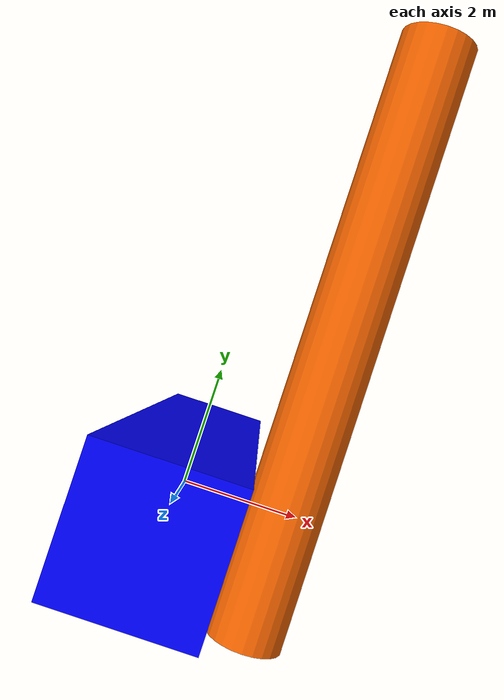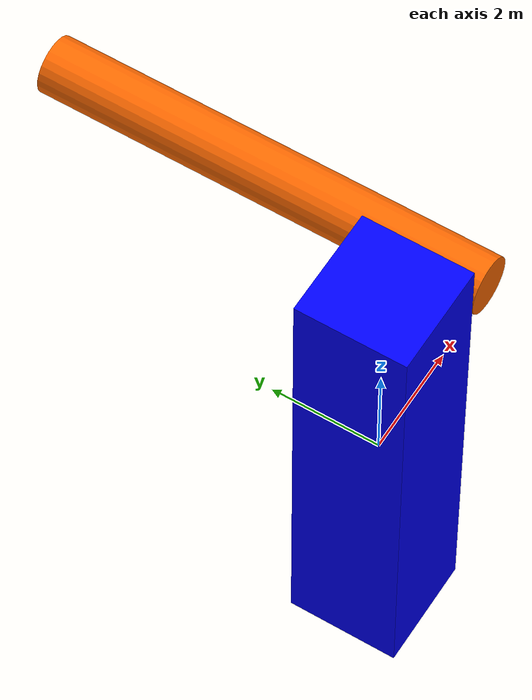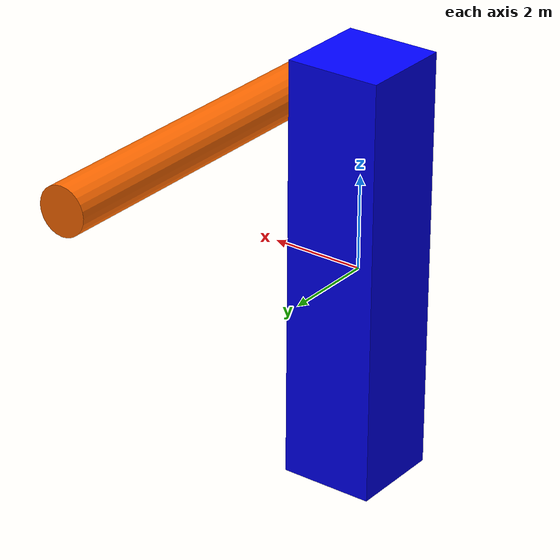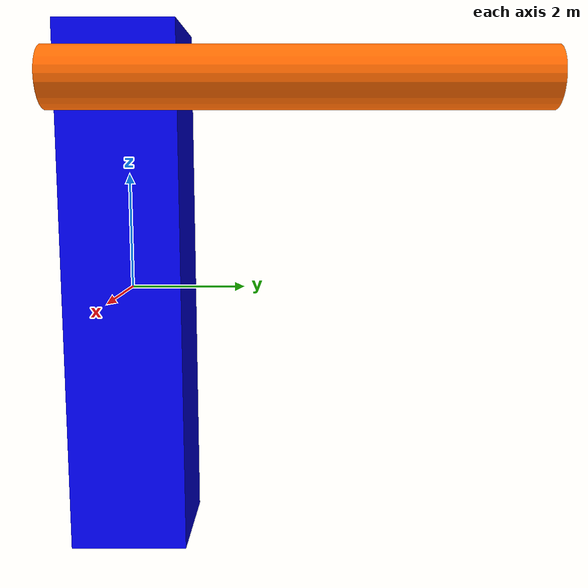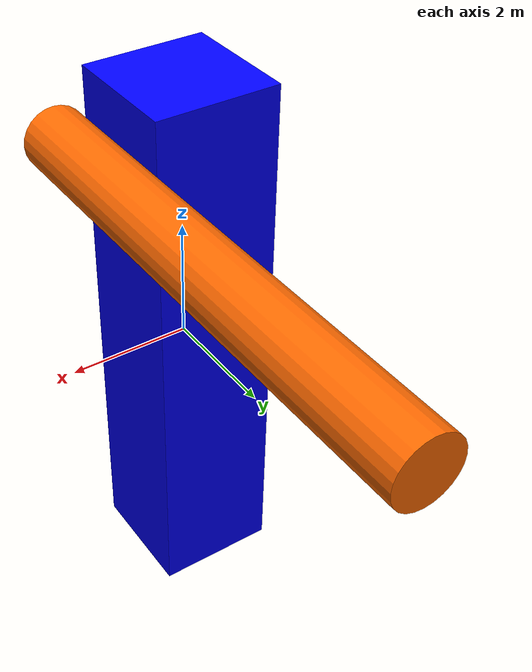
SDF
<sdf version='1.11'>
  <model name='robot_model'>
    <link name='base_link'>
      <inertial>
        <pose>0 0 0 0 0 0</pose>
        <mass>10</mass>
        <inertia>
          <ixx>70.833330000000004</ixx>
          <ixy>0</ixy>
          <ixz>0</ixz>
          <iyy>70.833330000000004</iyy>
          <iyz>0</iyz>
          <izz>6.6666699999999999</izz>
        </inertia>
      </inertial>
      <collision name='base_link_fixed_joint_lump__base_collision_collision'>
        <pose>0 0 0 0 0 0</pose>
        <geometry>
          <box>
            <size>2 2 9</size>
          </box>
        </geometry>
      </collision>
      <visual name='base_link_fixed_joint_lump__base_visual'>
        <pose>0 0 0 0 0 0</pose>
        <geometry>
          <box>
            <size>2 2 9</size>
          </box>
        </geometry>
        <material>
          <diffuse>0 0 1 1</diffuse>
          <ambient>0 0 1 1</ambient>
        </material>
      </visual>
    </link>
    <joint name='arm_base_joint' type='revolute'>
      <pose relative_to='base_link'>1.5 0 3.5 1.5708 0 0</pose>
      <parent>base_link</parent>
      <child>arm_link</child>
      <axis>
        <xyz>1 0 0</xyz>
        <limit>
          <lower>-1.5800000000000001</lower>
          <upper>0</upper>
          <effort>100</effort>
          <velocity>100</velocity>
        </limit>
        <dynamics>
          <spring_reference>0</spring_reference>
          <spring_stiffness>0</spring_stiffness>
        </dynamics>
      </axis>
    </joint>
    <link name='arm_link'>
      <pose relative_to='arm_base_joint'>0 0 0 0 0 0</pose>
      <inertial>
        <pose>0 0 -3 0 0 0</pose>
        <mass>0.10000000000000001</mass>
        <inertia>
          <ixx>0.53957999999999995</ixx>
          <ixy>0</ixy>
          <ixz>0</ixz>
          <iyy>0.012500000000000001</iyy>
          <iyz>0</iyz>
          <izz>0.53957999999999995</izz>
        </inertia>
      </inertial>
      <collision name='arm_link_fixed_joint_lump__arm_collision_collision'>
        <pose>0 0 -3 0 0 0</pose>
        <geometry>
          <cylinder>
            <length>8</length>
            <radius>0.5</radius>
          </cylinder>
        </geometry>
      </collision>
      <visual name='arm_link_fixed_joint_lump__arm_visual'>
        <pose>0 0 -3 0 0 0</pose>
        <geometry>
          <cylinder>
            <length>8</length>
            <radius>0.5</radius>
          </cylinder>
        </geometry>
        <material>
          <diffuse>1 0.411762476 0 1</diffuse>
          <ambient>1 0.411762476 0 1</ambient>
        </material>
      </visual>
    </link>
  </model>
</sdf>
